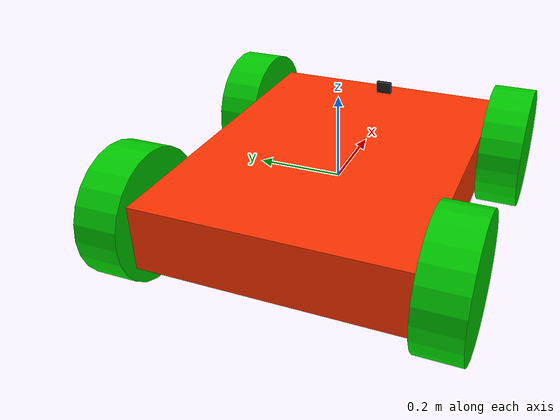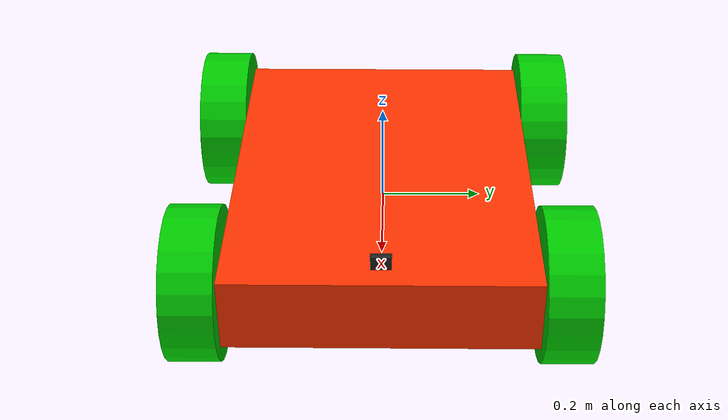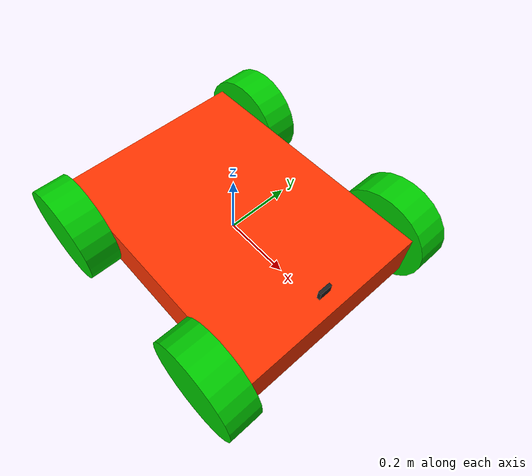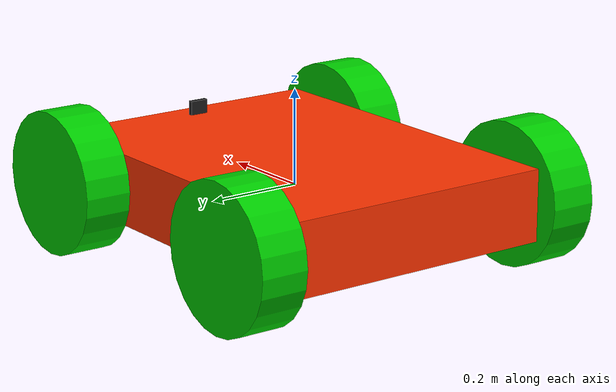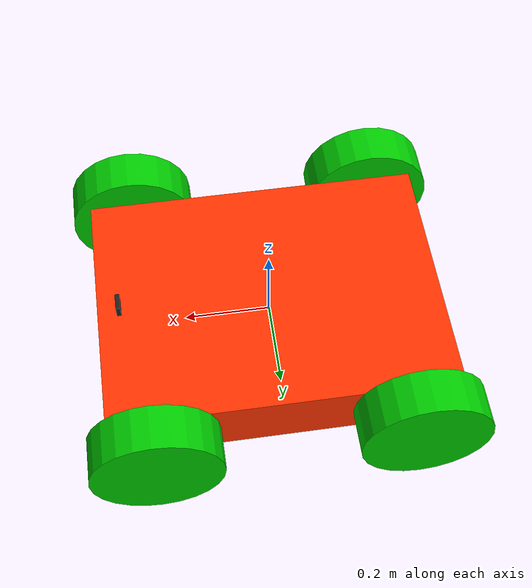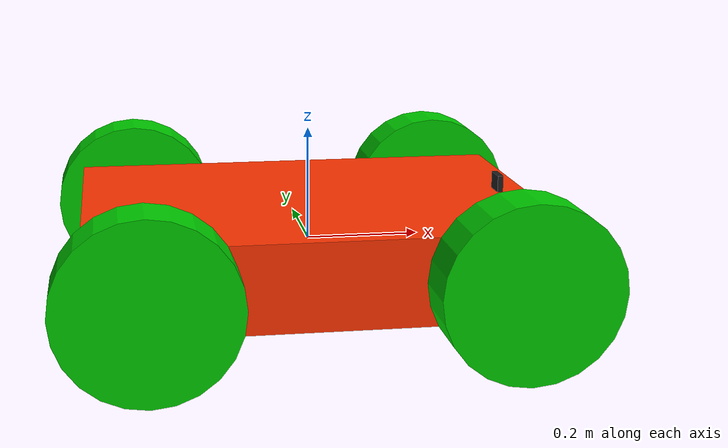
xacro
<?xml version = "1.0"?>
<robot name = "test" xmlns:xacro = "http://www.ros.org/wiki/xacro">

    <xacro:property name = "M_PI" value = "3.1415926"/>
    <xacro:property name = "base_mass" value="20"/>
    <xacro:property name = "base_box_length" value="0.8"/>
    <xacro:property name = "base_box_width" value="0.6"/>
    <xacro:property name = "base_box_height" value="0.15"/>
    <xacro:property name = "wheel_mass" value="1"/>
    <xacro:property name = "wheel_length" value="0.1"/>
    <xacro:property name = "wheel_radius" value="0.15"/>
    <!--定义轮子-->
    <xacro:macro name = "wheel_link" params="wheel_name length radius">
        <link name = "${wheel_name}">
            <visual>
                <origin xyz = "0 0 0 " rpy = "${M_PI/2} 0 0"/>
                <geometry>
                    <cylinder length = "${length}" radius = "${radius}" />
                </geometry>
                <material name = "green">
                    <color rgba = "0 0.8 0 1"/>
                </material>
            </visual>

            <collision>
                <origin xyz = "0 0 0 " rpy = "${M_PI/2} 0 0"/>
                <geometry>
                    <cylinder length = "${length}" radius = "${radius}" />
                </geometry>
                <material name = "green">
                    <color rgba = "0 0.8 0 1"/>
                </material>
            </collision>
            <inertial>
                <mass value = "${wheel_mass}"/>
                <origin xyz="0 0 0"/>
                <inertia ixx = "${0.1*wheel_mass*(3*wheel_radius*wheel_radius+wheel_length*wheel_length)}"
                         ixy = "0"
                         ixz = "0"
                         iyy = "${0.1*wheel_mass*(3*wheel_radius*wheel_radius+wheel_length*wheel_length)}"
                         iyz = "0"
                         izz = "${0.5*wheel_mass*wheel_radius*wheel_radius}"/>
            </inertial>

        </link>
        <gazebo reference = "${wheel_name}">
            <material>Gazebo/Black</material>
        </gazebo>

    </xacro:macro>

    <!--定义轮子的关节-->
    <xacro:macro name = "wheel_joint" params ="joint_name parent child x y z">
        <joint name = "${joint_name}" type = "continuous">
            <origin xyz = "${x} ${y} ${z}" rpy = "0 0 0"/>
            <parent link = "${parent}"/>
            <child link = "${child}"/>
            <axis xyz = "0 1 0"/>
        </joint>
        <!-- Transmission is important to link the joints and the controller -->
        <transmission name="${joint_name}_trans">
            <type>transmission_interface/SimpleTransmission</type>
            <joint name="{joint_name}" />
            <actuator name="{joint_name}_motor">
                <hardwareInterface>VelocityJointInterface</hardwareInterface>
                <mechanicalReduction>1</mechanicalReduction>
            </actuator>
        </transmission>

    </xacro:macro>

    <!--添加车轮及其关节-->
    <xacro:macro name = "add_wheel_link_joint" params = "wheel_name parent x_joint y_joint z_joint ">
        <wheel_link wheel_name = "${wheel_name}_link" length = "${wheel_length}" radius = "${wheel_radius}" />
        <wheel_joint joint_name = "${wheel_name}_joint" parent = "${parent}" child = "${wheel_name}_link" x="${x_joint}"
                     y="${y_joint}" z = "${z_joint}"/>

    </xacro:macro>

    <link name = "base_link">
        <visual>
            <origin xyz = "0 0 0" rpy = "0 0 0"/>
            <geometry>
                <box size = "${base_box_length} ${base_box_width} ${base_box_height}"/>
            </geometry>
            <material name = "red">
                <color rgba = "1 0.2 0 1"/>
            </material>
        </visual>

        <collision>
            <origin xyz = "0 0 0" rpy = "0 0 0"/>
            <geometry>
                <box size = "${base_box_length} ${base_box_width} ${base_box_height}"/>
            </geometry>
            <material name = "red">
                <color rgba = "1 0.2 0 1"/>
            </material>
        </collision>

        <inertial>
            <mass value = "${base_mass}"/>
            <origin xyz="0 0 0"/>
            <inertia ixx = "${0.1*base_mass*(base_box_height*base_box_height+base_box_length*base_box_length)}"
                     ixy = "0"
                     ixz = "0"
                     iyy = "${0.1*base_mass*(base_box_length*base_box_length+base_box_width*base_box_width)}"
                     iyz = "0"
                     izz = "${0.1*base_mass*(base_box_height*base_box_height+base_box_width*base_box_width)}"/>
        </inertial>
    </link>
    <gazebo reference = "base_link">
        <material>Gazebo/Blue</material>
    </gazebo>

    <add_wheel_link_joint wheel_name = "left_front_wheel" parent = "base_link" y_joint = "${base_box_width/2 + wheel_length/2}"
                          x_joint="${base_box_length/2 - 0.1}" z_joint="0"/>

    <add_wheel_link_joint wheel_name = "left_back_wheel" parent = "base_link" y_joint = "${base_box_width/2 + wheel_length/2}"
                          x_joint="${-base_box_length/2 + 0.1}" z_joint="0"/>

    <add_wheel_link_joint wheel_name = "right_front_wheel" parent = "base_link" y_joint = "${-base_box_width/2 - wheel_length/2}"
                          x_joint="${base_box_length/2 - 0.1}" z_joint="0"/>

    <add_wheel_link_joint wheel_name = "right_back_wheel" parent = "base_link" y_joint = "${-base_box_width/2 - wheel_length/2}"
                          x_joint="${-base_box_length/2 + 0.1}" z_joint="0"/>

    <gazebo reference="base_footprint">
        <turnGravityoff>false</turnGravityoff>
    </gazebo>

    <!-- controller -->
    <gazebo>
        <plugin name="skid_steer_drive_controller" filename="libgazebo_ros_skid_steer_drive.so">
            <updateRate>100.0</updateRate>
            <robotNamespace>/</robotNamespace>
            <leftFrontJoint>left_front_wheel_joint</leftFrontJoint>
            <rightFrontJoint>right_front_wheel_joint</rightFrontJoint>
            <leftRearJoint>left_back_wheel_joint</leftRearJoint>
            <rightRearJoint>right_back_wheel_joint</rightRearJoint>
            <wheelSeparation>${base_box_width}</wheelSeparation>
            <wheelDiameter>${2*wheel_radius}</wheelDiameter>
            <robotBaseFrame>base_link</robotBaseFrame>
            <torque>20</torque>
            <topicName>cmd_vel</topicName>
            <broadcastTF>true</broadcastTF>
        </plugin>
    </gazebo>

<!--    添加相机-->
    <xacro:include filename="$(find learn_model)/urdf/camera.xacro" />

    <!-- Attach the Kinect -->
    <joint name="camera_joint" type="fixed">
        <origin xyz="${base_box_length/2-0.05} 0 ${base_box_height/2+0.01} " rpy="0 0 0" />
        <parent link="base_link"/>
        <child link="camera_link"/>
    </joint>

    <xacro:usb_camera prefix="camera"/>

</robot>

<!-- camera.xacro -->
<robot xmlns:xacro="http://www.ros.org/wiki/xacro" name="camera">

    <xacro:macro name="usb_camera" params="prefix">
        <!-- Create laser reference frame -->
        <link name="${prefix}_link">
            <inertial>
                <mass value="0.1" />
                <origin xyz="0 0 0" />
                <inertia ixx="0.01" ixy="0.0" ixz="0.0"
                         iyy="0.01" iyz="0.0"
                         izz="0.01" />
            </inertial>

            <visual>
                <origin xyz=" 0 0 0 " rpy="0 0 0" />
                <geometry>
                    <box size="0.01 0.04 0.04" />
                </geometry>
                <material name="black"/>
            </visual>

            <collision>
                <origin xyz="0.0 0.0 0.0" rpy="0 0 0" />
                <geometry>
                    <box size="0.01 0.04 0.04" />
                </geometry>
            </collision>
        </link>
        <gazebo reference="${prefix}_link">
            <material>Gazebo/Black</material>
        </gazebo>

        <gazebo reference="${prefix}_link">
            <sensor type="camera" name="camera_node">
                <update_rate>30.0</update_rate>
                <camera name="head">
                    <horizontal_fov>1.3962634</horizontal_fov>
                    <image>
                        <width>1280</width>
                        <height>720</height>
                        <format>R8G8B8</format>
                    </image>
                    <clip>
                        <near>0.02</near>
                        <far>300</far>
                    </clip>
                    <noise>
                        <type>gaussian</type>
                        <mean>0.0</mean>
                        <stddev>0.007</stddev>
                    </noise>
                </camera>
                <plugin name="gazebo_camera" filename="libgazebo_ros_camera.so">
                    <alwaysOn>true</alwaysOn>
                    <updateRate>0.0</updateRate>
                    <cameraName>/camera</cameraName>
                    <imageTopicName>image_raw</imageTopicName>
                    <cameraInfoTopicName>camera_info</cameraInfoTopicName>
                    <frameName>camera_link</frameName>
                    <hackBaseline>0.07</hackBaseline>
                    <distortionK1>0.0</distortionK1>
                    <distortionK2>0.0</distortionK2>
                    <distortionK3>0.0</distortionK3>
                    <distortionT1>0.0</distortionT1>
                    <distortionT2>0.0</distortionT2>
                </plugin>
            </sensor>
        </gazebo>

    </xacro:macro>
</robot>
